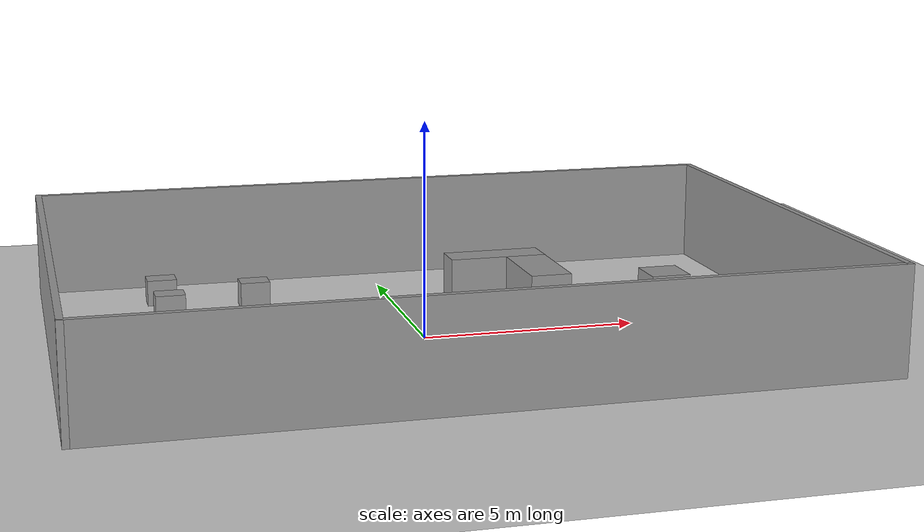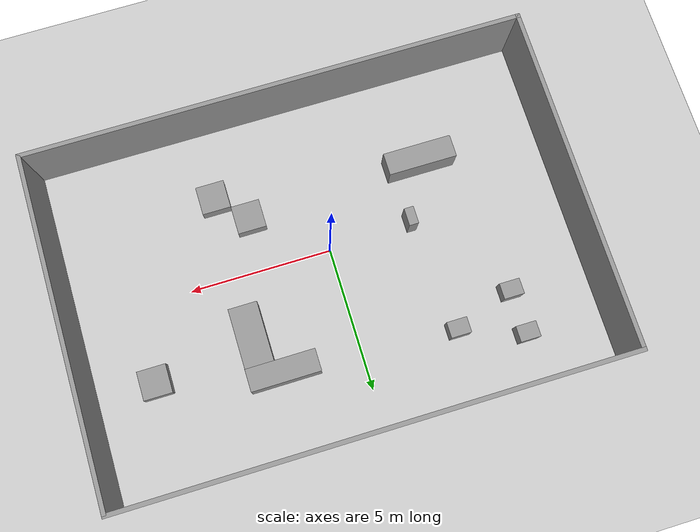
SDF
<sdf version="1.7">
 <world name="default">
  <light name="sun" type="directional">
   <pose>0 0 10 0 -0 0</pose>
   <diffuse>0.8 0.8 0.8 1</diffuse>
   <specular>0.2 0.2 0.2 1</specular>
   <attenuation>
    <range>1000</range>
    <constant>0.9</constant>
    <linear>0.01</linear>
    <quadratic>0.001</quadratic>
   </attenuation>
   <direction>-0.5 0.1 -0.9</direction>
   <spot><inner_angle>0</inner_angle><outer_angle>0</outer_angle><falloff>0</falloff></spot>
  </light>
  <model name="ground_plane">
   <static>1</static>
   <link name="link">
    <collision name="collision">
     <geometry><plane><normal>0 0 1</normal><size>100 100</size></plane></geometry>
     <surface><friction><ode><mu>100</mu><mu2>50</mu2></ode></friction></surface>
    </collision>
    <visual name="visual">
     <cast_shadows>0</cast_shadows>
     <geometry><plane><normal>0 0 1</normal><size>100 100</size></plane></geometry>
     <material>
      <script><uri>file://media/materials/scripts/gazebo.material</uri><name>Gazebo/Grey</name></script>
     </material>
    </visual>
   </link>
  </model>
  <gravity>0 0 -9.8</gravity>
  <magnetic_field>6e-06 2.3e-05 -4.2e-05</magnetic_field>
  <atmosphere type="adiabatic"/>
  <physics type="ode">
   <max_step_size>0.001</max_step_size>
   <real_time_factor>1</real_time_factor>
   <real_time_update_rate>1000</real_time_update_rate>
  </physics>
  <scene><ambient>0.4 0.4 0.4 1</ambient><background>0.7 0.7 0.7 1</background><shadows>1</shadows></scene>
  <audio><device>default</device></audio>
  <spherical_coordinates>
   <surface_model>EARTH_WGS84</surface_model>
   <latitude_deg>0</latitude_deg>
   <longitude_deg>0</longitude_deg>
   <elevation>0</elevation>
   <heading_deg>0</heading_deg>
  </spherical_coordinates>
  <model name="Untitleddsdsdsdsdsd">
   <pose>0.367065 0.44592 0 0 -0 0</pose>
   <link name="Wall_1">
    <collision name="Wall_1_Collision">
     <geometry><box><size>12 0.15 2.5</size></box></geometry>
     <pose>0 0 1.25 0 -0 0</pose>
    </collision>
    <visual name="Wall_1_Visual">
     <pose>0 0 1.25 0 -0 0</pose>
     <geometry><box><size>12 0.15 2.5</size></box></geometry>
     <material>
      <script><uri>file://media/materials/scripts/gazebo.material</uri><name>Gazebo/Grey</name></script>
      <ambient>1 1 1 1</ambient>
     </material>
     <meta><layer>0</layer></meta>
    </visual>
    <pose>-8.675 0 0 0 -0 1.5708</pose>
   </link>
   <link name="Wall_2">
    <collision name="Wall_2_Collision">
     <geometry><box><size>17.5 0.15 2.5</size></box></geometry>
     <pose>0 0 1.25 0 -0 0</pose>
    </collision>
    <visual name="Wall_2_Visual">
     <pose>0 0 1.25 0 -0 0</pose>
     <geometry><box><size>17.5 0.15 2.5</size></box></geometry>
     <material>
      <script><uri>file://media/materials/scripts/gazebo.material</uri><name>Gazebo/Grey</name></script>
      <ambient>1 1 1 1</ambient>
     </material>
     <meta><layer>0</layer></meta>
    </visual>
    <pose>-0 5.925 0 0 -0 0</pose>
   </link>
   <link name="Wall_3">
    <collision name="Wall_3_Collision">
     <geometry><box><size>12 0.15 2.5</size></box></geometry>
     <pose>0 0 1.25 0 -0 0</pose>
    </collision>
    <visual name="Wall_3_Visual">
     <pose>0 0 1.25 0 -0 0</pose>
     <geometry><box><size>12 0.15 2.5</size></box></geometry>
     <material>
      <script><uri>file://media/materials/scripts/gazebo.material</uri><name>Gazebo/Grey</name></script>
      <ambient>1 1 1 1</ambient>
     </material>
     <meta><layer>0</layer></meta>
    </visual>
    <pose>8.675 0 0 0 -0 -1.5708</pose>
   </link>
   <link name="Wall_4">
    <collision name="Wall_4_Collision">
     <geometry><box><size>17.5 0.15 2.5</size></box></geometry>
     <pose>0 0 1.25 0 -0 0</pose>
    </collision>
    <visual name="Wall_4_Visual">
     <pose>0 0 1.25 0 -0 0</pose>
     <geometry><box><size>17.5 0.15 2.5</size></box></geometry>
     <material>
      <script><uri>file://media/materials/scripts/gazebo.material</uri><name>Gazebo/Grey</name></script>
      <ambient>1 1 1 1</ambient>
     </material>
     <meta><layer>0</layer></meta>
    </visual>
    <pose>-0 -5.925 0 0 -0 3.14159</pose>
   </link>
   <static>1</static>
  </model>
  <model name="unit_box_clone_clone">
   <pose>-3.8886 -2.16293 0.5 -1e-06 -0 1e-06</pose>
   <link name="link">
    <inertial>
     <mass>1</mass>
     <inertia>
      <ixx>0.166667</ixx>
      <ixy>0</ixy>
      <ixz>0</ixz>
      <iyy>0.166667</iyy>
      <iyz>0</iyz>
      <izz>0.166667</izz>
     </inertia>
    </inertial>
    <collision name="collision"><geometry><box><size>2.41176 0.778504 1</size></box></geometry></collision>
    <visual name="visual">
     <geometry><box><size>2.41176 0.778504 1</size></box></geometry>
     <material>
      <script><name>Gazebo/Grey</name><uri>file://media/materials/scripts/gazebo.material</uri></script>
     </material>
    </visual>
   </link>
  </model>
  <model name="unit_box_clone_2_clone">
   <pose>-2.93365 -0.174991 0.5 0 -0 0.000303</pose>
   <link name="link">
    <inertial>
     <mass>1</mass>
     <inertia>
      <ixx>0.166667</ixx>
      <ixy>0</ixy>
      <ixz>0</ixz>
      <iyy>0.166667</iyy>
      <iyz>0</iyz>
      <izz>0.166667</izz>
     </inertia>
    </inertial>
    <collision name="collision"><geometry><box><size>0.331284 0.61892 1</size></box></geometry></collision>
    <visual name="visual">
     <geometry><box><size>0.331284 0.61892 1</size></box></geometry>
     <material>
      <script><name>Gazebo/Grey</name><uri>file://media/materials/scripts/gazebo.material</uri></script>
     </material>
    </visual>
   </link>
  </model>
  <model name="unit_box_clone_4">
   <pose>-5.51747 4.68026 0.312916 0 -0 0</pose>
   <link name="link">
    <inertial>
     <mass>1</mass>
     <inertia>
      <ixx>0.166667</ixx>
      <ixy>0</ixy>
      <ixz>0</ixz>
      <iyy>0.166667</iyy>
      <iyz>0</iyz>
      <izz>0.166667</izz>
     </inertia>
    </inertial>
    <collision name="collision">
     <geometry><box><size>0.712005 0.552778 0.625833</size></box></geometry>
    </collision>
    <visual name="visual">
     <geometry><box><size>0.712005 0.552778 0.625833</size></box></geometry>
     <material>
      <script><name>Gazebo/Grey</name><uri>file://media/materials/scripts/gazebo.material</uri></script>
     </material>
    </visual>
   </link>
  </model>
  <model name="unit_box_clone_5">
   <pose>-5.46976 3.1462 0.312916 0 -0 0</pose>
   <link name="link">
    <inertial>
     <mass>1</mass>
     <inertia>
      <ixx>0.166667</ixx>
      <ixy>0</ixy>
      <ixz>0</ixz>
      <iyy>0.166667</iyy>
      <iyz>0</iyz>
      <izz>0.166667</izz>
     </inertia>
    </inertial>
    <collision name="collision">
     <geometry><box><size>0.712005 0.552778 0.625833</size></box></geometry>
    </collision>
    <visual name="visual">
     <geometry><box><size>0.712005 0.552778 0.625833</size></box></geometry>
     <material>
      <script><name>Gazebo/Grey</name><uri>file://media/materials/scripts/gazebo.material</uri></script>
     </material>
    </visual>
   </link>
  </model>
  <model name="unit_box_clone_6">
   <pose>-3.33867 3.88238 0.312916 0 -0 0</pose>
   <link name="link">
    <inertial>
     <mass>1</mass>
     <inertia>
      <ixx>0.166667</ixx>
      <ixy>0</ixy>
      <ixz>0</ixz>
      <iyy>0.166667</iyy>
      <iyz>0</iyz>
      <izz>0.166667</izz>
     </inertia>
    </inertial>
    <collision name="collision">
     <geometry><box><size>0.712005 0.552778 0.625833</size></box></geometry>
    </collision>
    <visual name="visual">
     <geometry><box><size>0.712005 0.552778 0.625833</size></box></geometry>
     <material>
      <script><name>Gazebo/Grey</name><uri>file://media/materials/scripts/gazebo.material</uri></script>
     </material>
    </visual>
   </link>
  </model>
  <model name="unit_box_clone_clone_0">
   <pose>2.70257 3.58648 0.499949 0 -4.2e-05 0.002584</pose>
   <link name="link">
    <inertial>
     <mass>1</mass>
     <inertia>
      <ixx>0.166667</ixx>
      <ixy>0</ixy>
      <ixz>0</ixz>
      <iyy>0.166667</iyy>
      <iyz>0</iyz>
      <izz>0.166667</izz>
     </inertia>
    </inertial>
    <collision name="collision"><geometry><box><size>2.41176 0.778504 1</size></box></geometry></collision>
    <visual name="visual">
     <geometry><box><size>2.41176 0.778504 1</size></box></geometry>
     <material>
      <script><name>Gazebo/Grey</name><uri>file://media/materials/scripts/gazebo.material</uri></script>
     </material>
    </visual>
   </link>
  </model>
  <model name="unit_box_clone_0_clone_clone">
   <pose>3.40691 2.16494 0.499982 1.8e-05 -0 0.002585</pose>
   <link name="link">
    <inertial>
     <mass>1</mass>
     <inertia>
      <ixx>0.166667</ixx>
      <ixy>0</ixy>
      <ixz>0</ixz>
      <iyy>0.166667</iyy>
      <iyz>0</iyz>
      <izz>0.166667</izz>
     </inertia>
    </inertial>
    <collision name="collision"><geometry><box><size>1 2.06819 1</size></box></geometry></collision>
    <visual name="visual">
     <geometry><box><size>1 2.06819 1</size></box></geometry>
     <material>
      <script><name>Gazebo/Grey</name><uri>file://media/materials/scripts/gazebo.material</uri></script>
     </material>
    </visual>
   </link>
  </model>
  <model name="unit_box_clone_1_clone">
   <pose>2.38292 -1.88945 0.253428 0 -0 0</pose>
   <link name="link">
    <inertial>
     <mass>1</mass>
     <inertia>
      <ixx>0.166667</ixx>
      <ixy>0</ixy>
      <ixz>0</ixz>
      <iyy>0.166667</iyy>
      <iyz>0</iyz>
      <izz>0.166667</izz>
     </inertia>
    </inertial>
    <collision name="collision"><geometry><box><size>1 1 0.506857</size></box></geometry></collision>
    <visual name="visual">
     <geometry><box><size>1 1 0.506857</size></box></geometry>
     <material>
      <script><name>Gazebo/Grey</name><uri>file://media/materials/scripts/gazebo.material</uri></script>
     </material>
    </visual>
   </link>
  </model>
  <model name="unit_box_clone_1_clone_0">
   <pose>3.37966 -2.908 0.253428 0 -0 0</pose>
   <link name="link">
    <inertial>
     <mass>1</mass>
     <inertia>
      <ixx>0.166667</ixx>
      <ixy>0</ixy>
      <ixz>0</ixz>
      <iyy>0.166667</iyy>
      <iyz>0</iyz>
      <izz>0.166667</izz>
     </inertia>
    </inertial>
    <collision name="collision"><geometry><box><size>1 1 0.506857</size></box></geometry></collision>
    <visual name="visual">
     <geometry><box><size>1 1 0.506857</size></box></geometry>
     <material>
      <script><name>Gazebo/Grey</name><uri>file://media/materials/scripts/gazebo.material</uri></script>
     </material>
    </visual>
   </link>
  </model>
  <model name="unit_box_clone_1_clone_1">
   <pose>6.91745 2.69044 0.253428 0 -0 0</pose>
   <link name="link">
    <inertial>
     <mass>1</mass>
     <inertia>
      <ixx>0.166667</ixx>
      <ixy>0</ixy>
      <ixz>0</ixz>
      <iyy>0.166667</iyy>
      <iyz>0</iyz>
      <izz>0.166667</izz>
     </inertia>
    </inertial>
    <collision name="collision"><geometry><box><size>1 1 0.506857</size></box></geometry></collision>
    <visual name="visual">
     <geometry><box><size>1 1 0.506857</size></box></geometry>
     <material>
      <script><name>Gazebo/Grey</name><uri>file://media/materials/scripts/gazebo.material</uri></script>
     </material>
    </visual>
   </link>
  </model>
 </world>
</sdf>
